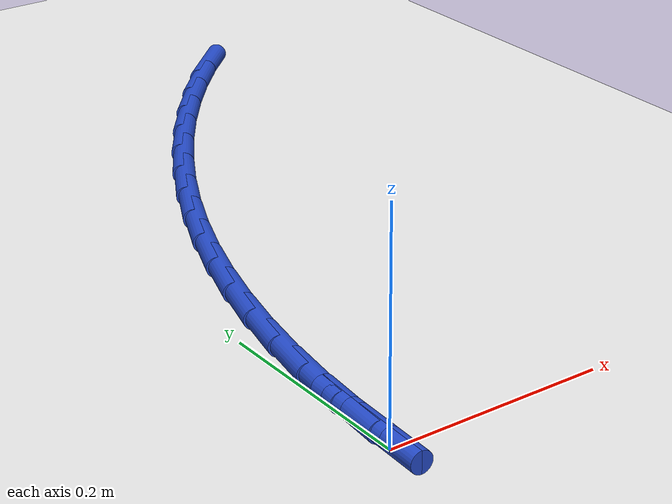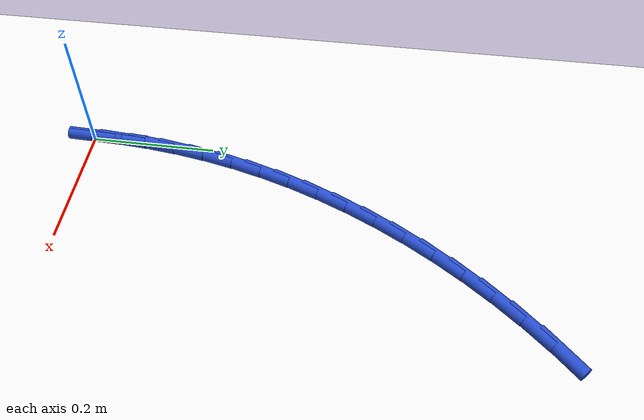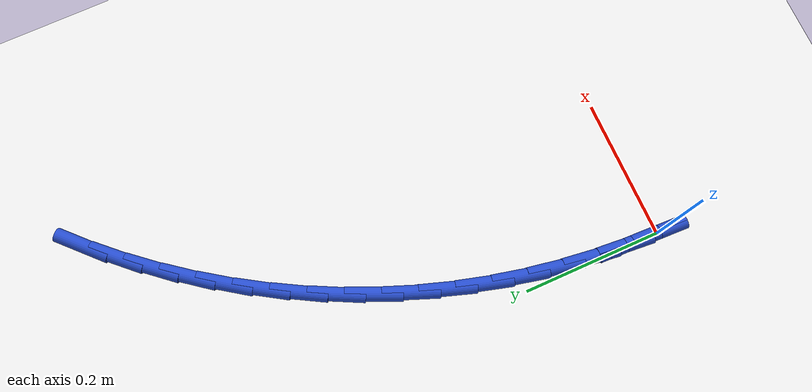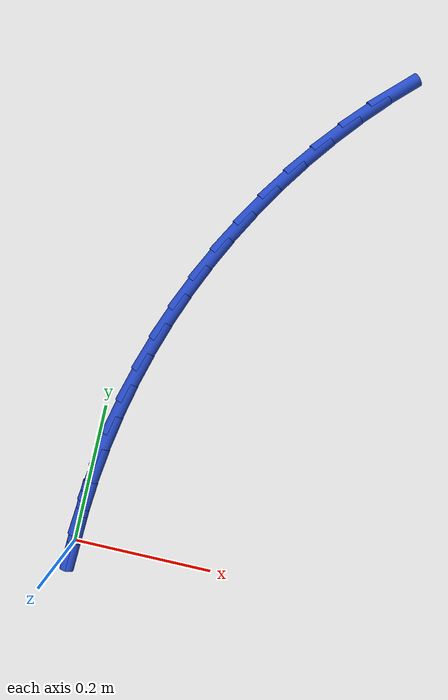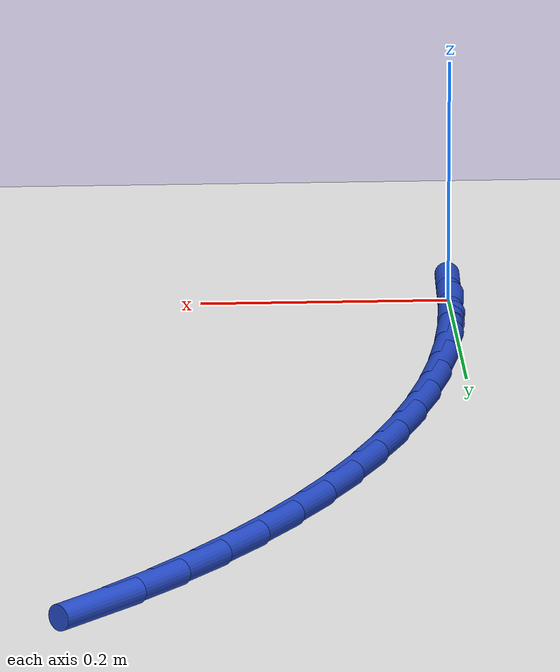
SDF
<sdf version="1.6">
 <world name="default">
  <model name="ground_plane">
   <static>1</static>
   <link name="link">
    <collision name="collision">
     <geometry><plane><normal>0 0 1</normal><size>100 100</size></plane></geometry>
     <surface><friction><ode><mu>100</mu><mu2>50</mu2></ode></friction></surface>
    </collision>
    <visual name="visual">
     <cast_shadows>0</cast_shadows>
     <geometry><plane><normal>0 0 1</normal><size>100 100</size></plane></geometry>
     <material>
      <script><uri>file://media/materials/scripts/gazebo.material</uri><name>Gazebo/WhiteGlow</name></script>
     </material>
    </visual>
   </link>
  </model>
  <model name="line">
   <link name="link_0">
    <pose>-2.7755575615628914e-17 4.163336342344337e-17 0.01 0 1.57 1.5334513663498914</pose>
    <collision name="collision">
     <geometry><cylinder><radius>0.01</radius><length>0.08</length></cylinder></geometry>
    </collision>
    <visual name="visual">
     <material>
      <script><name>Gazebo/Blue</name><uri>file://media/materials/scripts/gazebo.material</uri></script>
     </material>
     <geometry><cylinder><radius>0.01</radius><length>0.08</length></cylinder></geometry>
    </visual>
   </link>
   <link name="link_1">
    <pose>0.0019006311215718386 0.05087024989531458 0.01 0 1.57 1.4872357537538161</pose>
    <collision name="collision">
     <geometry><cylinder><radius>0.01</radius><length>0.08</length></cylinder></geometry>
    </collision>
    <visual name="visual">
     <material>
      <script><name>Gazebo/Blue</name><uri>file://media/materials/scripts/gazebo.material</uri></script>
     </material>
     <geometry><cylinder><radius>0.01</radius><length>0.08</length></cylinder></geometry>
    </visual>
   </link>
   <link name="link_2">
    <pose>0.00612523995798891 0.10130996697580699 0.01 0 1.57 1.4404470728081094</pose>
    <collision name="collision">
     <geometry><cylinder><radius>0.01</radius><length>0.08</length></cylinder></geometry>
    </collision>
    <visual name="visual">
     <material>
      <script><name>Gazebo/Blue</name><uri>file://media/materials/scripts/gazebo.material</uri></script>
     </material>
     <geometry><cylinder><radius>0.01</radius><length>0.08</length></cylinder></geometry>
    </visual>
   </link>
   <link name="link_3">
    <pose>0.012675125376173761 0.15127379047608064 0.01 0 1.57 1.3931579620040697</pose>
    <collision name="collision">
     <geometry><cylinder><radius>0.01</radius><length>0.08</length></cylinder></geometry>
    </collision>
    <visual name="visual">
     <material>
      <script><name>Gazebo/Blue</name><uri>file://media/materials/scripts/gazebo.material</uri></script>
     </material>
     <geometry><cylinder><radius>0.01</radius><length>0.08</length></cylinder></geometry>
    </visual>
   </link>
   <link name="link_4">
    <pose>0.021551586243048957 0.20071635963073908 0.01 0 1.57 1.3454496513613934</pose>
    <collision name="collision">
     <geometry><cylinder><radius>0.01</radius><length>0.08</length></cylinder></geometry>
    </collision>
    <visual name="visual">
     <material>
      <script><name>Gazebo/Blue</name><uri>file://media/materials/scripts/gazebo.material</uri></script>
     </material>
     <geometry><cylinder><radius>0.01</radius><length>0.08</length></cylinder></geometry>
    </visual>
   </link>
   <link name="link_5">
    <pose>0.03275592142553706 0.24959231367438556 0.01 0 1.57 1.2974111931169683</pose>
    <collision name="collision">
     <geometry><cylinder><radius>0.01</radius><length>0.08</length></cylinder></geometry>
    </collision>
    <visual name="visual">
     <material>
      <script><name>Gazebo/Blue</name><uri>file://media/materials/scripts/gazebo.material</uri></script>
     </material>
     <geometry><cylinder><radius>0.01</radius><length>0.08</length></cylinder></geometry>
    </visual>
   </link>
   <link name="link_6">
    <pose>0.046289429790560645 0.29785629184162354 0.01 0 1.57 1.2491384111693185</pose>
    <collision name="collision">
     <geometry><cylinder><radius>0.01</radius><length>0.08</length></cylinder></geometry>
    </collision>
    <visual name="visual">
     <material>
      <script><name>Gazebo/Blue</name><uri>file://media/materials/scripts/gazebo.material</uri></script>
     </material>
     <geometry><cylinder><radius>0.01</radius><length>0.08</length></cylinder></geometry>
    </visual>
   </link>
   <link name="link_7">
    <pose>0.06215341020504229 0.3454629333670565 0.01 0 1.57 1.2007325910381488</pose>
    <collision name="collision">
     <geometry><cylinder><radius>0.01</radius><length>0.08</length></cylinder></geometry>
    </collision>
    <visual name="visual">
     <material>
      <script><name>Gazebo/Blue</name><uri>file://media/materials/scripts/gazebo.material</uri></script>
     </material>
     <geometry><cylinder><radius>0.01</radius><length>0.08</length></cylinder></geometry>
    </visual>
   </link>
   <link name="link_8">
    <pose>0.08034916153590455 0.39236687748528776 0.01 0 1.57 1.1523396421303143</pose>
    <collision name="collision">
     <geometry><cylinder><radius>0.01</radius><length>0.08</length></cylinder></geometry>
    </collision>
    <visual name="visual">
     <material>
      <script><name>Gazebo/Blue</name><uri>file://media/materials/scripts/gazebo.material</uri></script>
     </material>
     <geometry><cylinder><radius>0.01</radius><length>0.08</length></cylinder></geometry>
    </visual>
   </link>
   <link name="link_9">
    <pose>0.10087317935745899 0.43851702147689847 0.01 0 1.57 1.1044048622155573</pose>
    <collision name="collision">
     <geometry><cylinder><radius>0.01</radius><length>0.08</length></cylinder></geometry>
    </collision>
    <visual name="visual">
     <material>
      <script><name>Gazebo/Blue</name><uri>file://media/materials/scripts/gazebo.material</uri></script>
     </material>
     <geometry><cylinder><radius>0.01</radius><length>0.08</length></cylinder></geometry>
    </visual>
   </link>
   <link name="link_10">
    <pose>0.12367067826876 0.48380096029800346 0.01 0 1.57 1.0569618173375206</pose>
    <collision name="collision">
     <geometry><cylinder><radius>0.01</radius><length>0.08</length></cylinder></geometry>
    </collision>
    <visual name="visual">
     <material>
      <script><name>Gazebo/Blue</name><uri>file://media/materials/scripts/gazebo.material</uri></script>
     </material>
     <geometry><cylinder><radius>0.01</radius><length>0.08</length></cylinder></geometry>
    </visual>
   </link>
   <link name="link_11">
    <pose>0.14865583118807907 0.52806918104595 0.01 0 1.57 1.0097399459500789</pose>
    <collision name="collision">
     <geometry><cylinder><radius>0.01</radius><length>0.08</length></cylinder></geometry>
    </collision>
    <visual name="visual">
     <material>
      <script><name>Gazebo/Blue</name><uri>file://media/materials/scripts/gazebo.material</uri></script>
     </material>
     <geometry><cylinder><radius>0.01</radius><length>0.08</length></cylinder></geometry>
    </visual>
   </link>
   <link name="link_12">
    <pose>0.17574237816608468 0.5711716533593172 0.01 0 1.57 0.9624675502229438</pose>
    <collision name="collision">
     <geometry><cylinder><radius>0.01</radius><length>0.08</length></cylinder></geometry>
    </collision>
    <visual name="visual">
     <material>
      <script><name>Gazebo/Blue</name><uri>file://media/materials/scripts/gazebo.material</uri></script>
     </material>
     <geometry><cylinder><radius>0.01</radius><length>0.08</length></cylinder></geometry>
    </visual>
   </link>
   <link name="link_13">
    <pose>0.20484405925344518 0.6129583468766846 0.01 0 1.57 0.9148749608358802</pose>
    <collision name="collision">
     <geometry><cylinder><radius>0.01</radius><length>0.08</length></cylinder></geometry>
    </collision>
    <visual name="visual">
     <material>
      <script><name>Gazebo/Blue</name><uri>file://media/materials/scripts/gazebo.material</uri></script>
     </material>
     <geometry><cylinder><radius>0.01</radius><length>0.08</length></cylinder></geometry>
    </visual>
   </link>
   <link name="link_14">
    <pose>0.23587461450082903 0.6532792312366317 0.01 0 1.57 0.8666941565900934</pose>
    <collision name="collision">
     <geometry><cylinder><radius>0.01</radius><length>0.08</length></cylinder></geometry>
    </collision>
    <visual name="visual">
     <material>
      <script><name>Gazebo/Blue</name><uri>file://media/materials/scripts/gazebo.material</uri></script>
     </material>
     <geometry><cylinder><radius>0.01</radius><length>0.08</length></cylinder></geometry>
    </visual>
   </link>
   <link name="link_15">
    <pose>0.26874778395890475 0.6919842760777378 0.01 0 1.57 0.8176587741697361</pose>
    <collision name="collision">
     <geometry><cylinder><radius>0.01</radius><length>0.08</length></cylinder></geometry>
    </collision>
    <visual name="visual">
     <material>
      <script><name>Gazebo/Blue</name><uri>file://media/materials/scripts/gazebo.material</uri></script>
     </material>
     <geometry><cylinder><radius>0.01</radius><length>0.08</length></cylinder></geometry>
    </visual>
   </link>
   <link name="link_16">
    <pose>0.3033773076783406 0.7289234510385822 0.01 0 1.57 0.7675047908296786</pose>
    <collision name="collision">
     <geometry><cylinder><radius>0.01</radius><length>0.08</length></cylinder></geometry>
    </collision>
    <visual name="visual">
     <material>
      <script><name>Gazebo/Blue</name><uri>file://media/materials/scripts/gazebo.material</uri></script>
     </material>
     <geometry><cylinder><radius>0.01</radius><length>0.08</length></cylinder></geometry>
    </visual>
   </link>
   <link name="link_150">
    <pose>-3.8163916471489756e-17 2.3592239273284576e-16 0.01 0 1.57 1.533846470545013</pose>
    <collision name="collision">
     <geometry><cylinder><radius>0.01</radius><length>0.08</length></cylinder></geometry>
    </collision>
    <visual name="visual">
     <material>
      <script><name>Gazebo/Blue</name><uri>file://media/materials/scripts/gazebo.material</uri></script>
     </material>
     <geometry><cylinder><radius>0.01</radius><length>0.08</length></cylinder></geometry>
    </visual>
   </link>
   <link name="link_151">
    <pose>0.0018787907977872356 0.050823896976692734 0.01 0 1.57 1.5338464705450132</pose>
    <collision name="collision">
     <geometry><cylinder><radius>0.01</radius><length>0.08</length></cylinder></geometry>
    </collision>
    <visual name="visual">
     <material>
      <script><name>Gazebo/Blue</name><uri>file://media/materials/scripts/gazebo.material</uri></script>
     </material>
     <geometry><cylinder><radius>0.01</radius><length>0.08</length></cylinder></geometry>
    </visual>
   </link>
  </model>
 </world>
</sdf>
